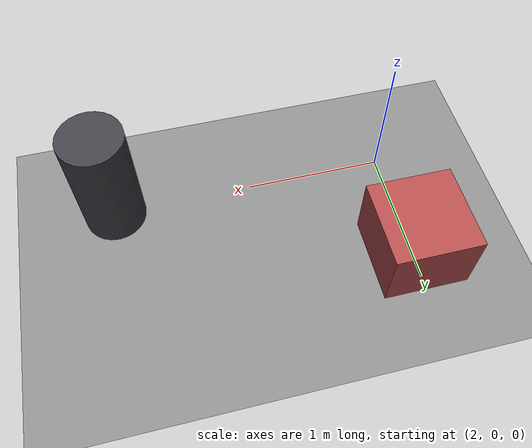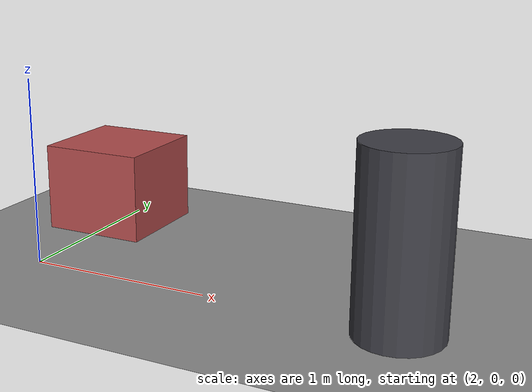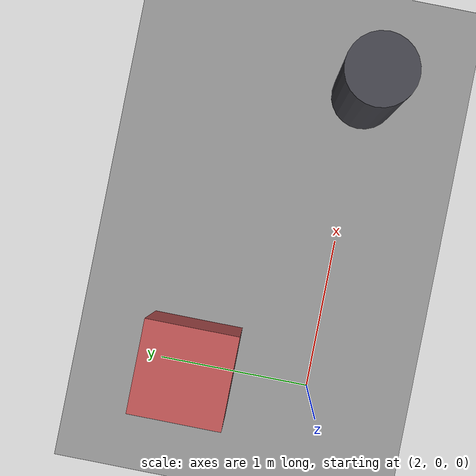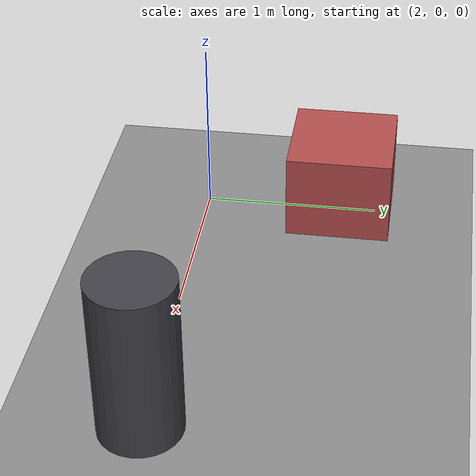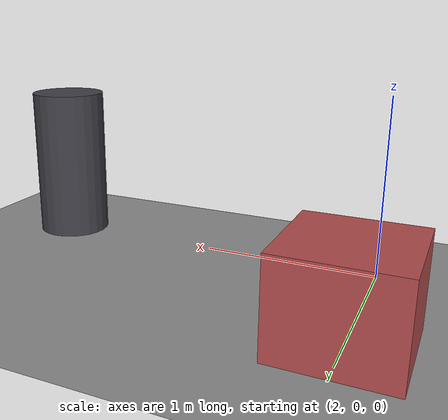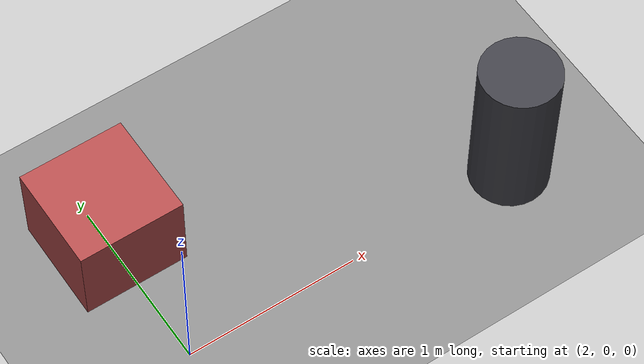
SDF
<?xml version="1.0"?>
<sdf version="1.8">
  <world name="bunker_dual_piper_standalone_test">
    <gravity>0 0 -9.81</gravity>
    <magnetic_field>6e-06 2.3e-05 -4.2e-05</magnetic_field>
    <atmosphere type="adiabatic"/>

    <plugin filename="libignition-gazebo-physics-system.so"
            name="ignition::gazebo::systems::Physics"/>
    <plugin filename="libignition-gazebo-user-commands-system.so"
            name="ignition::gazebo::systems::UserCommands"/>
    <plugin filename="libignition-gazebo-scene-broadcaster-system.so"
            name="ignition::gazebo::systems::SceneBroadcaster"/>
    <plugin filename="libignition-gazebo-sensors-system.so"
            name="ignition::gazebo::systems::Sensors">
      <render_engine>ogre2</render_engine>
    </plugin>

    <light name="sun" type="directional">
      <cast_shadows>true</cast_shadows>
      <pose>0 0 10 0 0 0</pose>
      <diffuse>0.8 0.8 0.8 1</diffuse>
      <specular>0.2 0.2 0.2 1</specular>
      <attenuation>
        <range>1000</range><constant>0.9</constant>
        <linear>0.01</linear><quadratic>0.001</quadratic>
      </attenuation>
      <direction>-0.5 0.1 -0.9</direction>
    </light>

    <model name="ground_plane">
      <static>true</static>
      <link name="link">
        <collision name="collision">
          <geometry><plane><normal>0 0 1</normal><size>30 30</size></plane></geometry>
        </collision>
        <visual name="visual">
          <geometry><plane><normal>0 0 1</normal><size>30 30</size></plane></geometry>
          <material>
            <ambient>0.45 0.45 0.45 1</ambient>
            <diffuse>0.55 0.55 0.55 1</diffuse>
          </material>
        </visual>
      </link>
    </model>

    <model name="box_obstacle">
      <static>true</static>
      <pose>2.0 0.8 0.25 0 0 0</pose>
      <link name="link">
        <collision name="collision">
          <geometry><box><size>0.6 0.6 0.5</size></box></geometry>
        </collision>
        <visual name="visual">
          <geometry><box><size>0.6 0.6 0.5</size></box></geometry>
          <material>
            <ambient>0.6 0.2 0.2 1</ambient>
            <diffuse>0.7 0.3 0.3 1</diffuse>
          </material>
        </visual>
      </link>
    </model>

    <model name="trash_can_target">
      <static>true</static>
      <pose>4.0 0 0.45 0 0 0</pose>
      <link name="link">
        <collision name="collision">
          <geometry><cylinder><radius>0.22</radius><length>0.9</length></cylinder></geometry>
        </collision>
        <visual name="visual">
          <geometry><cylinder><radius>0.22</radius><length>0.9</length></cylinder></geometry>
          <material>
            <ambient>0.15 0.15 0.18 1</ambient>
            <diffuse>0.25 0.25 0.28 1</diffuse>
          </material>
        </visual>
      </link>
    </model>
  </world>
</sdf>
